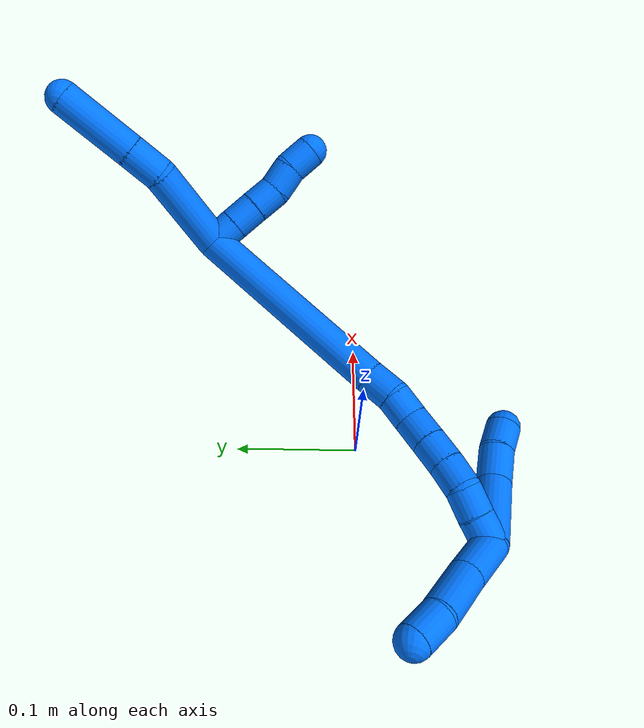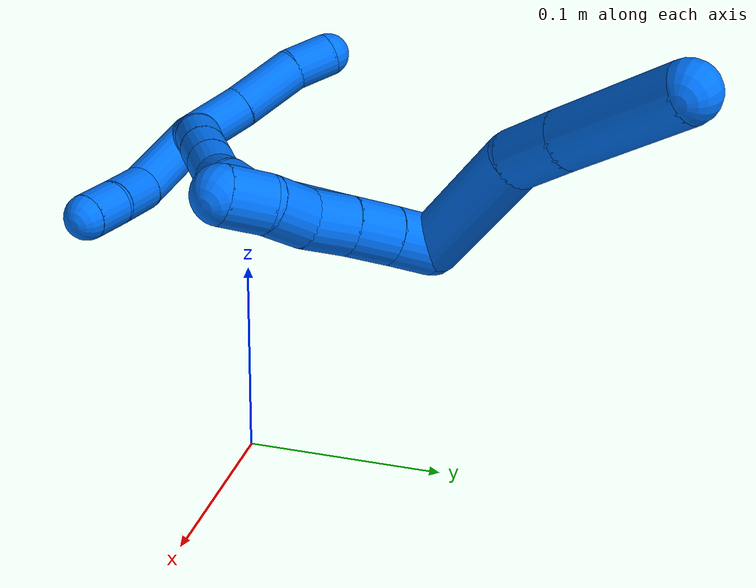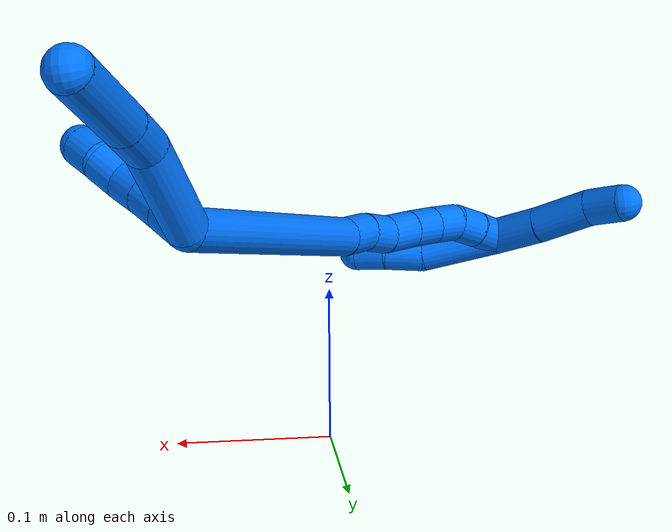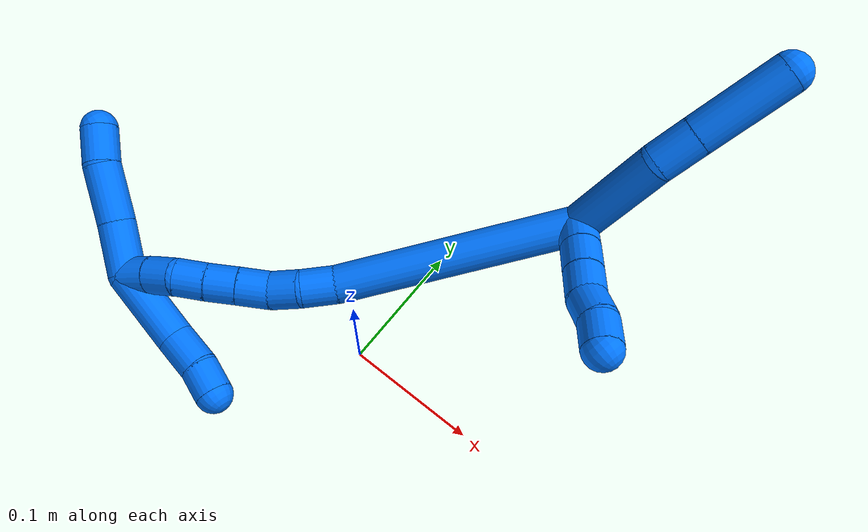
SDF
<sdf version="1.7">
 <world name="default">
  <model name="14">
   <static>0</static>
   <link name="14">
    <collision name="collision-cylinder-e_1_2_8">
     <pose>0.03073 0.009785 -0.002334 -1.80492 1.25443 -1.48541</pose>
     <geometry><cylinder><radius>0.0125</radius><length>0.064668</length></cylinder></geometry>
     <surface>
      <friction><ode><mu>1.16</mu><mu2>1.16</mu2><slip1>0</slip1><slip2>0</slip2></ode></friction>
      <contact><ode><kp>1e+06</kp><kd>1</kd><max_vel>0</max_vel><min_depth>0.001</min_depth></ode></contact>
     </surface>
    </collision>
    <visual name="visual-cylinder-e_1_2_8">
     <pose>0.03073 0.009785 -0.002334 -1.80492 1.25443 -1.48541</pose>
     <geometry><cylinder><radius>0.0125</radius><length>0.064668</length></cylinder></geometry>
     <material><ambient>0 0.462745 1 1</ambient></material>
    </visual>
    <collision name="collision-cylinder-e_2_8_9">
     <pose>0.072205 0.027433 -0.00603 -1.74235 0.93207 -1.07734</pose>
     <geometry><cylinder><radius>0.0125</radius><length>0.026769</length></cylinder></geometry>
     <surface>
      <friction><ode><mu>1.16</mu><mu2>1.16</mu2><slip1>0</slip1><slip2>0</slip2></ode></friction>
      <contact><ode><kp>1e+06</kp><kd>1</kd><max_vel>0</max_vel><min_depth>0.001</min_depth></ode></contact>
     </surface>
    </collision>
    <visual name="visual-cylinder-e_2_8_9">
     <pose>0.072205 0.027433 -0.00603 -1.74235 0.93207 -1.07734</pose>
     <geometry><cylinder><radius>0.0125</radius><length>0.026769</length></cylinder></geometry>
     <material><ambient>0 0.462745 1 1</ambient></material>
    </visual>
    <collision name="collision-cylinder-e_3_9_6">
     <pose>0.106216 0.052788 -0.010574 -1.75072 0.918262 -1.06963</pose>
     <geometry><cylinder><radius>0.0125</radius><length>0.058563</length></cylinder></geometry>
     <surface>
      <friction><ode><mu>1.16</mu><mu2>1.16</mu2><slip1>0</slip1><slip2>0</slip2></ode></friction>
      <contact><ode><kp>1e+06</kp><kd>1</kd><max_vel>0</max_vel><min_depth>0.001</min_depth></ode></contact>
     </surface>
    </collision>
    <visual name="visual-cylinder-e_3_9_6">
     <pose>0.106216 0.052788 -0.010574 -1.75072 0.918262 -1.06963</pose>
     <geometry><cylinder><radius>0.0125</radius><length>0.058563</length></cylinder></geometry>
     <material><ambient>0 0.462745 1 1</ambient></material>
    </visual>
    <collision name="collision-cylinder-e_1_2_10">
     <pose>0.002126 -0.007094 -0.006719 2.32905 0.214248 0.489889</pose>
     <geometry><cylinder><radius>0.0125</radius><length>0.02</length></cylinder></geometry>
     <surface>
      <friction><ode><mu>1.16</mu><mu2>1.16</mu2><slip1>0</slip1><slip2>0</slip2></ode></friction>
      <contact><ode><kp>1e+06</kp><kd>1</kd><max_vel>0</max_vel><min_depth>0.001</min_depth></ode></contact>
     </surface>
    </collision>
    <visual name="visual-cylinder-e_1_2_10">
     <pose>0.002126 -0.007094 -0.006719 2.32905 0.214248 0.489889</pose>
     <geometry><cylinder><radius>0.0125</radius><length>0.02</length></cylinder></geometry>
     <material><ambient>0 0.462745 1 1</ambient></material>
    </visual>
    <collision name="collision-cylinder-e_2_10_11">
     <pose>0.006128 -0.02134 -0.020173 2.3262 0.188715 0.431427</pose>
     <geometry><cylinder><radius>0.0125</radius><length>0.02</length></cylinder></geometry>
     <surface>
      <friction><ode><mu>1.16</mu><mu2>1.16</mu2><slip1>0</slip1><slip2>0</slip2></ode></friction>
      <contact><ode><kp>1e+06</kp><kd>1</kd><max_vel>0</max_vel><min_depth>0.001</min_depth></ode></contact>
     </surface>
    </collision>
    <visual name="visual-cylinder-e_2_10_11">
     <pose>0.006128 -0.02134 -0.020173 2.3262 0.188715 0.431427</pose>
     <geometry><cylinder><radius>0.0125</radius><length>0.02</length></cylinder></geometry>
     <material><ambient>0 0.462745 1 1</ambient></material>
    </visual>
    <collision name="collision-cylinder-e_3_11_12">
     <pose>0.009515 -0.035503 -0.033873 2.35287 0.151638 0.361094</pose>
     <geometry><cylinder><radius>0.0125</radius><length>0.02</length></cylinder></geometry>
     <surface>
      <friction><ode><mu>1.16</mu><mu2>1.16</mu2><slip1>0</slip1><slip2>0</slip2></ode></friction>
      <contact><ode><kp>1e+06</kp><kd>1</kd><max_vel>0</max_vel><min_depth>0.001</min_depth></ode></contact>
     </surface>
    </collision>
    <visual name="visual-cylinder-e_3_11_12">
     <pose>0.009515 -0.035503 -0.033873 2.35287 0.151638 0.361094</pose>
     <geometry><cylinder><radius>0.0125</radius><length>0.02</length></cylinder></geometry>
     <material><ambient>0 0.462745 1 1</ambient></material>
    </visual>
    <collision name="collision-cylinder-e_4_12_13">
     <pose>0.015098 -0.048168 -0.048014 2.47438 0.419512 1.10173</pose>
     <geometry><cylinder><radius>0.0125</radius><length>0.02</length></cylinder></geometry>
     <surface>
      <friction><ode><mu>1.16</mu><mu2>1.16</mu2><slip1>0</slip1><slip2>0</slip2></ode></friction>
      <contact><ode><kp>1e+06</kp><kd>1</kd><max_vel>0</max_vel><min_depth>0.001</min_depth></ode></contact>
     </surface>
    </collision>
    <visual name="visual-cylinder-e_4_12_13">
     <pose>0.015098 -0.048168 -0.048014 2.47438 0.419512 1.10173</pose>
     <geometry><cylinder><radius>0.0125</radius><length>0.02</length></cylinder></geometry>
     <material><ambient>0 0.462745 1 1</ambient></material>
    </visual>
    <collision name="collision-cylinder-e_5_13_5">
     <pose>0.020975 -0.060849 -0.062068 2.34535 0.181322 0.425759</pose>
     <geometry><cylinder><radius>0.0125</radius><length>0.02</length></cylinder></geometry>
     <surface>
      <friction><ode><mu>1.16</mu><mu2>1.16</mu2><slip1>0</slip1><slip2>0</slip2></ode></friction>
      <contact><ode><kp>1e+06</kp><kd>1</kd><max_vel>0</max_vel><min_depth>0.001</min_depth></ode></contact>
     </surface>
    </collision>
    <visual name="visual-cylinder-e_5_13_5">
     <pose>0.020975 -0.060849 -0.062068 2.34535 0.181322 0.425759</pose>
     <geometry><cylinder><radius>0.0125</radius><length>0.02</length></cylinder></geometry>
     <material><ambient>0 0.462745 1 1</ambient></material>
    </visual>
    <collision name="collision-cylinder-e_1_2_14">
     <pose>-0.042052 -0.056607 0.032583 1.04851 -0.572033 -0.336868</pose>
     <geometry><cylinder><radius>0.0125</radius><length>0.155363</length></cylinder></geometry>
     <surface>
      <friction><ode><mu>1.16</mu><mu2>1.16</mu2><slip1>0</slip1><slip2>0</slip2></ode></friction>
      <contact><ode><kp>1e+06</kp><kd>1</kd><max_vel>0</max_vel><min_depth>0.001</min_depth></ode></contact>
     </surface>
    </collision>
    <visual name="visual-cylinder-e_1_2_14">
     <pose>-0.042052 -0.056607 0.032583 1.04851 -0.572033 -0.336868</pose>
     <geometry><cylinder><radius>0.0125</radius><length>0.155363</length></cylinder></geometry>
     <material><ambient>0 0.462745 1 1</ambient></material>
    </visual>
    <collision name="collision-cylinder-e_2_14_15">
     <pose>-0.08841 -0.122038 0.070835 0.999717 -0.389496 -0.214614</pose>
     <geometry><cylinder><radius>0.0125</radius><length>0.022675</length></cylinder></geometry>
     <surface>
      <friction><ode><mu>1.16</mu><mu2>1.16</mu2><slip1>0</slip1><slip2>0</slip2></ode></friction>
      <contact><ode><kp>1e+06</kp><kd>1</kd><max_vel>0</max_vel><min_depth>0.001</min_depth></ode></contact>
     </surface>
    </collision>
    <visual name="visual-cylinder-e_2_14_15">
     <pose>-0.08841 -0.122038 0.070835 0.999717 -0.389496 -0.214614</pose>
     <geometry><cylinder><radius>0.0125</radius><length>0.022675</length></cylinder></geometry>
     <material><ambient>0 0.462745 1 1</ambient></material>
    </visual>
    <collision name="collision-cylinder-e_3_15_16">
     <pose>-0.098217 -0.136886 0.082354 0.800146 -0.580046 -0.251079</pose>
     <geometry><cylinder><radius>0.0125</radius><length>0.020078</length></cylinder></geometry>
     <surface>
      <friction><ode><mu>1.16</mu><mu2>1.16</mu2><slip1>0</slip1><slip2>0</slip2></ode></friction>
      <contact><ode><kp>1e+06</kp><kd>1</kd><max_vel>0</max_vel><min_depth>0.001</min_depth></ode></contact>
     </surface>
    </collision>
    <visual name="visual-cylinder-e_3_15_16">
     <pose>-0.098217 -0.136886 0.082354 0.800146 -0.580046 -0.251079</pose>
     <geometry><cylinder><radius>0.0125</radius><length>0.020078</length></cylinder></geometry>
     <material><ambient>0 0.462745 1 1</ambient></material>
    </visual>
    <collision name="collision-cylinder-e_4_16_17">
     <pose>-0.106869 -0.149857 0.095764 0.743056 -0.297697 -0.116721</pose>
     <geometry><cylinder><radius>0.0125</radius><length>0.021479</length></cylinder></geometry>
     <surface>
      <friction><ode><mu>1.16</mu><mu2>1.16</mu2><slip1>0</slip1><slip2>0</slip2></ode></friction>
      <contact><ode><kp>1e+06</kp><kd>1</kd><max_vel>0</max_vel><min_depth>0.001</min_depth></ode></contact>
     </surface>
    </collision>
    <visual name="visual-cylinder-e_4_16_17">
     <pose>-0.106869 -0.149857 0.095764 0.743056 -0.297697 -0.116721</pose>
     <geometry><cylinder><radius>0.0125</radius><length>0.021479</length></cylinder></geometry>
     <material><ambient>0 0.462745 1 1</ambient></material>
    </visual>
    <collision name="collision-cylinder-e_5_17_18">
     <pose>-0.113236 -0.163209 0.110337 0.74022 -0.326574 -0.127672</pose>
     <geometry><cylinder><radius>0.0125</radius><length>0.020055</length></cylinder></geometry>
     <surface>
      <friction><ode><mu>1.16</mu><mu2>1.16</mu2><slip1>0</slip1><slip2>0</slip2></ode></friction>
      <contact><ode><kp>1e+06</kp><kd>1</kd><max_vel>0</max_vel><min_depth>0.001</min_depth></ode></contact>
     </surface>
    </collision>
    <visual name="visual-cylinder-e_5_17_18">
     <pose>-0.113236 -0.163209 0.110337 0.74022 -0.326574 -0.127672</pose>
     <geometry><cylinder><radius>0.0125</radius><length>0.020055</length></cylinder></geometry>
     <material><ambient>0 0.462745 1 1</ambient></material>
    </visual>
    <collision name="collision-cylinder-e_6_18_19">
     <pose>-0.119855 -0.175634 0.12478 0.680907 -0.341868 -0.122147</pose>
     <geometry><cylinder><radius>0.0125</radius><length>0.020301</length></cylinder></geometry>
     <surface>
      <friction><ode><mu>1.16</mu><mu2>1.16</mu2><slip1>0</slip1><slip2>0</slip2></ode></friction>
      <contact><ode><kp>1e+06</kp><kd>1</kd><max_vel>0</max_vel><min_depth>0.001</min_depth></ode></contact>
     </surface>
    </collision>
    <visual name="visual-cylinder-e_6_18_19">
     <pose>-0.119855 -0.175634 0.12478 0.680907 -0.341868 -0.122147</pose>
     <geometry><cylinder><radius>0.0125</radius><length>0.020301</length></cylinder></geometry>
     <material><ambient>0 0.462745 1 1</ambient></material>
    </visual>
    <collision name="collision-cylinder-e_7_19_20">
     <pose>-0.129364 -0.185716 0.139024 0.537476 -0.656003 -0.186888</pose>
     <geometry><cylinder><radius>0.0125</radius><length>0.020021</length></cylinder></geometry>
     <surface>
      <friction><ode><mu>1.16</mu><mu2>1.16</mu2><slip1>0</slip1><slip2>0</slip2></ode></friction>
      <contact><ode><kp>1e+06</kp><kd>1</kd><max_vel>0</max_vel><min_depth>0.001</min_depth></ode></contact>
     </surface>
    </collision>
    <visual name="visual-cylinder-e_7_19_20">
     <pose>-0.129364 -0.185716 0.139024 0.537476 -0.656003 -0.186888</pose>
     <geometry><cylinder><radius>0.0125</radius><length>0.020021</length></cylinder></geometry>
     <material><ambient>0 0.462745 1 1</ambient></material>
    </visual>
    <collision name="collision-cylinder-e_8_20_1">
     <pose>-0.142041 -0.194053 0.15207 0.601371 -0.715661 -0.23087</pose>
     <geometry><cylinder><radius>0.0125</radius><length>0.020029</length></cylinder></geometry>
     <surface>
      <friction><ode><mu>1.16</mu><mu2>1.16</mu2><slip1>0</slip1><slip2>0</slip2></ode></friction>
      <contact><ode><kp>1e+06</kp><kd>1</kd><max_vel>0</max_vel><min_depth>0.001</min_depth></ode></contact>
     </surface>
    </collision>
    <visual name="visual-cylinder-e_8_20_1">
     <pose>-0.142041 -0.194053 0.15207 0.601371 -0.715661 -0.23087</pose>
     <geometry><cylinder><radius>0.0125</radius><length>0.020029</length></cylinder></geometry>
     <material><ambient>0 0.462745 1 1</ambient></material>
    </visual>
    <collision name="collision-cylinder-e_1_1_21">
     <pose>-0.151445 -0.196197 0.132129 -3.06035 -0.107495 1.84762</pose>
     <geometry><cylinder><radius>0.0125</radius><length>0.052824</length></cylinder></geometry>
     <surface>
      <friction><ode><mu>1.16</mu><mu2>1.16</mu2><slip1>0</slip1><slip2>0</slip2></ode></friction>
      <contact><ode><kp>1e+06</kp><kd>1</kd><max_vel>0</max_vel><min_depth>0.001</min_depth></ode></contact>
     </surface>
    </collision>
    <visual name="visual-cylinder-e_1_1_21">
     <pose>-0.151445 -0.196197 0.132129 -3.06035 -0.107495 1.84762</pose>
     <geometry><cylinder><radius>0.0125</radius><length>0.052824</length></cylinder></geometry>
     <material><ambient>0 0.462745 1 1</ambient></material>
    </visual>
    <collision name="collision-cylinder-e_2_21_22">
     <pose>-0.152153 -0.19406 0.092874 -3.14109 0.161059 -3.13533</pose>
     <geometry><cylinder><radius>0.0125</radius><length>0.026507</length></cylinder></geometry>
     <surface>
      <friction><ode><mu>1.16</mu><mu2>1.16</mu2><slip1>0</slip1><slip2>0</slip2></ode></friction>
      <contact><ode><kp>1e+06</kp><kd>1</kd><max_vel>0</max_vel><min_depth>0.001</min_depth></ode></contact>
     </surface>
    </collision>
    <visual name="visual-cylinder-e_2_21_22">
     <pose>-0.152153 -0.19406 0.092874 -3.14109 0.161059 -3.13533</pose>
     <geometry><cylinder><radius>0.0125</radius><length>0.026507</length></cylinder></geometry>
     <material><ambient>0 0.462745 1 1</ambient></material>
    </visual>
    <collision name="collision-cylinder-e_3_22_4">
     <pose>-0.149848 -0.195329 0.069538 3.01778 0.017386 0.278688</pose>
     <geometry><cylinder><radius>0.0125</radius><length>0.020669</length></cylinder></geometry>
     <surface>
      <friction><ode><mu>1.16</mu><mu2>1.16</mu2><slip1>0</slip1><slip2>0</slip2></ode></friction>
      <contact><ode><kp>1e+06</kp><kd>1</kd><max_vel>0</max_vel><min_depth>0.001</min_depth></ode></contact>
     </surface>
    </collision>
    <visual name="visual-cylinder-e_3_22_4">
     <pose>-0.149848 -0.195329 0.069538 3.01778 0.017386 0.278688</pose>
     <geometry><cylinder><radius>0.0125</radius><length>0.020669</length></cylinder></geometry>
     <material><ambient>0 0.462745 1 1</ambient></material>
    </visual>
    <collision name="collision-cylinder-e_1_1_23">
     <pose>-0.142425 -0.19335 0.174153 -0.304318 0.356451 -0.055232</pose>
     <geometry><cylinder><radius>0.0125</radius><length>0.035459</length></cylinder></geometry>
     <surface>
      <friction><ode><mu>1.16</mu><mu2>1.16</mu2><slip1>0</slip1><slip2>0</slip2></ode></friction>
      <contact><ode><kp>1e+06</kp><kd>1</kd><max_vel>0</max_vel><min_depth>0.001</min_depth></ode></contact>
     </surface>
    </collision>
    <visual name="visual-cylinder-e_1_1_23">
     <pose>-0.142425 -0.19335 0.174153 -0.304318 0.356451 -0.055232</pose>
     <geometry><cylinder><radius>0.0125</radius><length>0.035459</length></cylinder></geometry>
     <material><ambient>0 0.462745 1 1</ambient></material>
    </visual>
    <collision name="collision-cylinder-e_2_23_24">
     <pose>-0.128599 -0.183955 0.207717 -0.244354 0.396309 -0.049299</pose>
     <geometry><cylinder><radius>0.0125</radius><length>0.039578</length></cylinder></geometry>
     <surface>
      <friction><ode><mu>1.16</mu><mu2>1.16</mu2><slip1>0</slip1><slip2>0</slip2></ode></friction>
      <contact><ode><kp>1e+06</kp><kd>1</kd><max_vel>0</max_vel><min_depth>0.001</min_depth></ode></contact>
     </surface>
    </collision>
    <visual name="visual-cylinder-e_2_23_24">
     <pose>-0.128599 -0.183955 0.207717 -0.244354 0.396309 -0.049299</pose>
     <geometry><cylinder><radius>0.0125</radius><length>0.039578</length></cylinder></geometry>
     <material><ambient>0 0.462745 1 1</ambient></material>
    </visual>
    <collision name="collision-cylinder-e_3_24_3">
     <pose>-0.117287 -0.174346 0.23617 -0.450358 0.298712 -0.06891</pose>
     <geometry><cylinder><radius>0.0125</radius><length>0.024963</length></cylinder></geometry>
     <surface>
      <friction><ode><mu>1.16</mu><mu2>1.16</mu2><slip1>0</slip1><slip2>0</slip2></ode></friction>
      <contact><ode><kp>1e+06</kp><kd>1</kd><max_vel>0</max_vel><min_depth>0.001</min_depth></ode></contact>
     </surface>
    </collision>
    <visual name="visual-cylinder-e_3_24_3">
     <pose>-0.117287 -0.174346 0.23617 -0.450358 0.298712 -0.06891</pose>
     <geometry><cylinder><radius>0.0125</radius><length>0.024963</length></cylinder></geometry>
     <material><ambient>0 0.462745 1 1</ambient></material>
    </visual>
    <collision name="collision-sphere-3">
     <pose>-0.113614 -0.169153 0.246909 0 -0 0</pose>
     <geometry><sphere><radius>0.0125</radius></sphere></geometry>
     <surface>
      <friction><ode><mu>1.16</mu><mu2>1.16</mu2><slip1>0</slip1><slip2>0</slip2></ode></friction>
      <contact><ode><kp>1e+06</kp><kd>1</kd><max_vel>0</max_vel><min_depth>0.001</min_depth></ode></contact>
     </surface>
    </collision>
    <visual name="visual-sphere-3">
     <pose>-0.113614 -0.169153 0.246909 0 -0 0</pose>
     <geometry><sphere><radius>0.0125</radius></sphere></geometry>
     <material><ambient>0 0.462745 1 1</ambient></material>
    </visual>
    <collision name="collision-sphere-24">
     <pose>-0.12096 -0.179538 0.22543 0 -0 0</pose>
     <geometry><sphere><radius>0.0125</radius></sphere></geometry>
     <surface>
      <friction><ode><mu>1.16</mu><mu2>1.16</mu2><slip1>0</slip1><slip2>0</slip2></ode></friction>
      <contact><ode><kp>1e+06</kp><kd>1</kd><max_vel>0</max_vel><min_depth>0.001</min_depth></ode></contact>
     </surface>
    </collision>
    <visual name="visual-sphere-24">
     <pose>-0.12096 -0.179538 0.22543 0 -0 0</pose>
     <geometry><sphere><radius>0.0125</radius></sphere></geometry>
     <material><ambient>0 0.462745 1 1</ambient></material>
    </visual>
    <collision name="collision-sphere-23">
     <pose>-0.136238 -0.188371 0.190004 0 -0 0</pose>
     <geometry><sphere><radius>0.0125</radius></sphere></geometry>
     <surface>
      <friction><ode><mu>1.16</mu><mu2>1.16</mu2><slip1>0</slip1><slip2>0</slip2></ode></friction>
      <contact><ode><kp>1e+06</kp><kd>1</kd><max_vel>0</max_vel><min_depth>0.001</min_depth></ode></contact>
     </surface>
    </collision>
    <visual name="visual-sphere-23">
     <pose>-0.136238 -0.188371 0.190004 0 -0 0</pose>
     <geometry><sphere><radius>0.0125</radius></sphere></geometry>
     <material><ambient>0 0.462745 1 1</ambient></material>
    </visual>
    <collision name="collision-sphere-4">
     <pose>-0.149668 -0.196605 0.059284 0 -0 0</pose>
     <geometry><sphere><radius>0.0125</radius></sphere></geometry>
     <surface>
      <friction><ode><mu>1.16</mu><mu2>1.16</mu2><slip1>0</slip1><slip2>0</slip2></ode></friction>
      <contact><ode><kp>1e+06</kp><kd>1</kd><max_vel>0</max_vel><min_depth>0.001</min_depth></ode></contact>
     </surface>
    </collision>
    <visual name="visual-sphere-4">
     <pose>-0.149668 -0.196605 0.059284 0 -0 0</pose>
     <geometry><sphere><radius>0.0125</radius></sphere></geometry>
     <material><ambient>0 0.462745 1 1</ambient></material>
    </visual>
    <collision name="collision-sphere-22">
     <pose>-0.150028 -0.194053 0.079792 0 -0 0</pose>
     <geometry><sphere><radius>0.0125</radius></sphere></geometry>
     <surface>
      <friction><ode><mu>1.16</mu><mu2>1.16</mu2><slip1>0</slip1><slip2>0</slip2></ode></friction>
      <contact><ode><kp>1e+06</kp><kd>1</kd><max_vel>0</max_vel><min_depth>0.001</min_depth></ode></contact>
     </surface>
    </collision>
    <visual name="visual-sphere-22">
     <pose>-0.150028 -0.194053 0.079792 0 -0 0</pose>
     <geometry><sphere><radius>0.0125</radius></sphere></geometry>
     <material><ambient>0 0.462745 1 1</ambient></material>
    </visual>
    <collision name="collision-sphere-21">
     <pose>-0.154279 -0.194066 0.105956 0 -0 0</pose>
     <geometry><sphere><radius>0.0125</radius></sphere></geometry>
     <surface>
      <friction><ode><mu>1.16</mu><mu2>1.16</mu2><slip1>0</slip1><slip2>0</slip2></ode></friction>
      <contact><ode><kp>1e+06</kp><kd>1</kd><max_vel>0</max_vel><min_depth>0.001</min_depth></ode></contact>
     </surface>
    </collision>
    <visual name="visual-sphere-21">
     <pose>-0.154279 -0.194066 0.105956 0 -0 0</pose>
     <geometry><sphere><radius>0.0125</radius></sphere></geometry>
     <material><ambient>0 0.462745 1 1</ambient></material>
    </visual>
    <collision name="collision-sphere-1">
     <pose>-0.148611 -0.198328 0.158301 0 -0 0</pose>
     <geometry><sphere><radius>0.0125</radius></sphere></geometry>
     <surface>
      <friction><ode><mu>1.16</mu><mu2>1.16</mu2><slip1>0</slip1><slip2>0</slip2></ode></friction>
      <contact><ode><kp>1e+06</kp><kd>1</kd><max_vel>0</max_vel><min_depth>0.001</min_depth></ode></contact>
     </surface>
    </collision>
    <visual name="visual-sphere-1">
     <pose>-0.148611 -0.198328 0.158301 0 -0 0</pose>
     <geometry><sphere><radius>0.0125</radius></sphere></geometry>
     <material><ambient>0 0.462745 1 1</ambient></material>
    </visual>
    <collision name="collision-sphere-11">
     <pose>0.008004 -0.02849 -0.026907 0 -0 0</pose>
     <geometry><sphere><radius>0.0125</radius></sphere></geometry>
     <surface>
      <friction><ode><mu>1.16</mu><mu2>1.16</mu2><slip1>0</slip1><slip2>0</slip2></ode></friction>
      <contact><ode><kp>1e+06</kp><kd>1</kd><max_vel>0</max_vel><min_depth>0.001</min_depth></ode></contact>
     </surface>
    </collision>
    <visual name="visual-sphere-11">
     <pose>0.008004 -0.02849 -0.026907 0 -0 0</pose>
     <geometry><sphere><radius>0.0125</radius></sphere></geometry>
     <material><ambient>0 0.462745 1 1</ambient></material>
    </visual>
    <collision name="collision-sphere-10">
     <pose>0.004252 -0.014189 -0.013439 0 -0 0</pose>
     <geometry><sphere><radius>0.0125</radius></sphere></geometry>
     <surface>
      <friction><ode><mu>1.16</mu><mu2>1.16</mu2><slip1>0</slip1><slip2>0</slip2></ode></friction>
      <contact><ode><kp>1e+06</kp><kd>1</kd><max_vel>0</max_vel><min_depth>0.001</min_depth></ode></contact>
     </surface>
    </collision>
    <visual name="visual-sphere-10">
     <pose>0.004252 -0.014189 -0.013439 0 -0 0</pose>
     <geometry><sphere><radius>0.0125</radius></sphere></geometry>
     <material><ambient>0 0.462745 1 1</ambient></material>
    </visual>
    <collision name="collision-sphere-6">
     <pose>0.129481 0.07028 -0.013755 0 -0 0</pose>
     <geometry><sphere><radius>0.0125</radius></sphere></geometry>
     <surface>
      <friction><ode><mu>1.16</mu><mu2>1.16</mu2><slip1>0</slip1><slip2>0</slip2></ode></friction>
      <contact><ode><kp>1e+06</kp><kd>1</kd><max_vel>0</max_vel><min_depth>0.001</min_depth></ode></contact>
     </surface>
    </collision>
    <visual name="visual-sphere-6">
     <pose>0.129481 0.07028 -0.013755 0 -0 0</pose>
     <geometry><sphere><radius>0.0125</radius></sphere></geometry>
     <material><ambient>0 0.462745 1 1</ambient></material>
    </visual>
    <collision name="collision-sphere-9">
     <pose>0.082951 0.035295 -0.007392 0 -0 0</pose>
     <geometry><sphere><radius>0.0125</radius></sphere></geometry>
     <surface>
      <friction><ode><mu>1.16</mu><mu2>1.16</mu2><slip1>0</slip1><slip2>0</slip2></ode></friction>
      <contact><ode><kp>1e+06</kp><kd>1</kd><max_vel>0</max_vel><min_depth>0.001</min_depth></ode></contact>
     </surface>
    </collision>
    <visual name="visual-sphere-9">
     <pose>0.082951 0.035295 -0.007392 0 -0 0</pose>
     <geometry><sphere><radius>0.0125</radius></sphere></geometry>
     <material><ambient>0 0.462745 1 1</ambient></material>
    </visual>
    <collision name="collision-sphere-2">
     <geometry><sphere><radius>0.0125</radius></sphere></geometry>
     <surface>
      <friction><ode><mu>1.16</mu><mu2>1.16</mu2><slip1>0</slip1><slip2>0</slip2></ode></friction>
      <contact><ode><kp>1e+06</kp><kd>1</kd><max_vel>0</max_vel><min_depth>0.001</min_depth></ode></contact>
     </surface>
    </collision>
    <visual name="visual-sphere-2">
     <geometry><sphere><radius>0.0125</radius></sphere></geometry>
     <material><ambient>0 0.462745 1 1</ambient></material>
    </visual>
    <collision name="collision-sphere-19">
     <pose>-0.123258 -0.181654 0.13221 0 -0 0</pose>
     <geometry><sphere><radius>0.0125</radius></sphere></geometry>
     <surface>
      <friction><ode><mu>1.16</mu><mu2>1.16</mu2><slip1>0</slip1><slip2>0</slip2></ode></friction>
      <contact><ode><kp>1e+06</kp><kd>1</kd><max_vel>0</max_vel><min_depth>0.001</min_depth></ode></contact>
     </surface>
    </collision>
    <visual name="visual-sphere-19">
     <pose>-0.123258 -0.181654 0.13221 0 -0 0</pose>
     <geometry><sphere><radius>0.0125</radius></sphere></geometry>
     <material><ambient>0 0.462745 1 1</ambient></material>
    </visual>
    <collision name="collision-sphere-8">
     <pose>0.061459 0.01957 -0.004667 0 -0 0</pose>
     <geometry><sphere><radius>0.0125</radius></sphere></geometry>
     <surface>
      <friction><ode><mu>1.16</mu><mu2>1.16</mu2><slip1>0</slip1><slip2>0</slip2></ode></friction>
      <contact><ode><kp>1e+06</kp><kd>1</kd><max_vel>0</max_vel><min_depth>0.001</min_depth></ode></contact>
     </surface>
    </collision>
    <visual name="visual-sphere-8">
     <pose>0.061459 0.01957 -0.004667 0 -0 0</pose>
     <geometry><sphere><radius>0.0125</radius></sphere></geometry>
     <material><ambient>0 0.462745 1 1</ambient></material>
    </visual>
    <collision name="collision-sphere-12">
     <pose>0.011025 -0.042517 -0.04084 0 -0 0</pose>
     <geometry><sphere><radius>0.0125</radius></sphere></geometry>
     <surface>
      <friction><ode><mu>1.16</mu><mu2>1.16</mu2><slip1>0</slip1><slip2>0</slip2></ode></friction>
      <contact><ode><kp>1e+06</kp><kd>1</kd><max_vel>0</max_vel><min_depth>0.001</min_depth></ode></contact>
     </surface>
    </collision>
    <visual name="visual-sphere-12">
     <pose>0.011025 -0.042517 -0.04084 0 -0 0</pose>
     <geometry><sphere><radius>0.0125</radius></sphere></geometry>
     <material><ambient>0 0.462745 1 1</ambient></material>
    </visual>
    <collision name="collision-sphere-13">
     <pose>0.019172 -0.053819 -0.055189 0 -0 0</pose>
     <geometry><sphere><radius>0.0125</radius></sphere></geometry>
     <surface>
      <friction><ode><mu>1.16</mu><mu2>1.16</mu2><slip1>0</slip1><slip2>0</slip2></ode></friction>
      <contact><ode><kp>1e+06</kp><kd>1</kd><max_vel>0</max_vel><min_depth>0.001</min_depth></ode></contact>
     </surface>
    </collision>
    <visual name="visual-sphere-13">
     <pose>0.019172 -0.053819 -0.055189 0 -0 0</pose>
     <geometry><sphere><radius>0.0125</radius></sphere></geometry>
     <material><ambient>0 0.462745 1 1</ambient></material>
    </visual>
    <collision name="collision-sphere-5">
     <pose>0.022778 -0.06788 -0.068947 0 -0 0</pose>
     <geometry><sphere><radius>0.0125</radius></sphere></geometry>
     <surface>
      <friction><ode><mu>1.16</mu><mu2>1.16</mu2><slip1>0</slip1><slip2>0</slip2></ode></friction>
      <contact><ode><kp>1e+06</kp><kd>1</kd><max_vel>0</max_vel><min_depth>0.001</min_depth></ode></contact>
     </surface>
    </collision>
    <visual name="visual-sphere-5">
     <pose>0.022778 -0.06788 -0.068947 0 -0 0</pose>
     <geometry><sphere><radius>0.0125</radius></sphere></geometry>
     <material><ambient>0 0.462745 1 1</ambient></material>
    </visual>
    <collision name="collision-sphere-14">
     <pose>-0.084105 -0.113214 0.065166 0 -0 0</pose>
     <geometry><sphere><radius>0.0125</radius></sphere></geometry>
     <surface>
      <friction><ode><mu>1.16</mu><mu2>1.16</mu2><slip1>0</slip1><slip2>0</slip2></ode></friction>
      <contact><ode><kp>1e+06</kp><kd>1</kd><max_vel>0</max_vel><min_depth>0.001</min_depth></ode></contact>
     </surface>
    </collision>
    <visual name="visual-sphere-14">
     <pose>-0.084105 -0.113214 0.065166 0 -0 0</pose>
     <geometry><sphere><radius>0.0125</radius></sphere></geometry>
     <material><ambient>0 0.462745 1 1</ambient></material>
    </visual>
    <collision name="collision-sphere-15">
     <pose>-0.092715 -0.130862 0.076504 0 -0 0</pose>
     <geometry><sphere><radius>0.0125</radius></sphere></geometry>
     <surface>
      <friction><ode><mu>1.16</mu><mu2>1.16</mu2><slip1>0</slip1><slip2>0</slip2></ode></friction>
      <contact><ode><kp>1e+06</kp><kd>1</kd><max_vel>0</max_vel><min_depth>0.001</min_depth></ode></contact>
     </surface>
    </collision>
    <visual name="visual-sphere-15">
     <pose>-0.092715 -0.130862 0.076504 0 -0 0</pose>
     <geometry><sphere><radius>0.0125</radius></sphere></geometry>
     <material><ambient>0 0.462745 1 1</ambient></material>
    </visual>
    <collision name="collision-sphere-16">
     <pose>-0.103719 -0.142911 0.088203 0 -0 0</pose>
     <geometry><sphere><radius>0.0125</radius></sphere></geometry>
     <surface>
      <friction><ode><mu>1.16</mu><mu2>1.16</mu2><slip1>0</slip1><slip2>0</slip2></ode></friction>
      <contact><ode><kp>1e+06</kp><kd>1</kd><max_vel>0</max_vel><min_depth>0.001</min_depth></ode></contact>
     </surface>
    </collision>
    <visual name="visual-sphere-16">
     <pose>-0.103719 -0.142911 0.088203 0 -0 0</pose>
     <geometry><sphere><radius>0.0125</radius></sphere></geometry>
     <material><ambient>0 0.462745 1 1</ambient></material>
    </visual>
    <collision name="collision-sphere-17">
     <pose>-0.110019 -0.156803 0.103325 0 -0 0</pose>
     <geometry><sphere><radius>0.0125</radius></sphere></geometry>
     <surface>
      <friction><ode><mu>1.16</mu><mu2>1.16</mu2><slip1>0</slip1><slip2>0</slip2></ode></friction>
      <contact><ode><kp>1e+06</kp><kd>1</kd><max_vel>0</max_vel><min_depth>0.001</min_depth></ode></contact>
     </surface>
    </collision>
    <visual name="visual-sphere-17">
     <pose>-0.110019 -0.156803 0.103325 0 -0 0</pose>
     <geometry><sphere><radius>0.0125</radius></sphere></geometry>
     <material><ambient>0 0.462745 1 1</ambient></material>
    </visual>
    <collision name="collision-sphere-18">
     <pose>-0.116452 -0.169614 0.117349 0 -0 0</pose>
     <geometry><sphere><radius>0.0125</radius></sphere></geometry>
     <surface>
      <friction><ode><mu>1.16</mu><mu2>1.16</mu2><slip1>0</slip1><slip2>0</slip2></ode></friction>
      <contact><ode><kp>1e+06</kp><kd>1</kd><max_vel>0</max_vel><min_depth>0.001</min_depth></ode></contact>
     </surface>
    </collision>
    <visual name="visual-sphere-18">
     <pose>-0.116452 -0.169614 0.117349 0 -0 0</pose>
     <geometry><sphere><radius>0.0125</radius></sphere></geometry>
     <material><ambient>0 0.462745 1 1</ambient></material>
    </visual>
    <collision name="collision-sphere-20">
     <pose>-0.13547 -0.189777 0.145838 0 -0 0</pose>
     <geometry><sphere><radius>0.0125</radius></sphere></geometry>
     <surface>
      <friction><ode><mu>1.16</mu><mu2>1.16</mu2><slip1>0</slip1><slip2>0</slip2></ode></friction>
      <contact><ode><kp>1e+06</kp><kd>1</kd><max_vel>0</max_vel><min_depth>0.001</min_depth></ode></contact>
     </surface>
    </collision>
    <visual name="visual-sphere-20">
     <pose>-0.13547 -0.189777 0.145838 0 -0 0</pose>
     <geometry><sphere><radius>0.0125</radius></sphere></geometry>
     <material><ambient>0 0.462745 1 1</ambient></material>
    </visual>
    <inertial>
     <pose>-0.053234 -0.092009 0.063701 0 -0 0</pose>
     <mass>0.75</mass>
     <inertia>
      <ixx>0.000193</ixx>
      <ixy>0</ixy>
      <ixz>0</ixz>
      <iyy>0.000153</iyy>
      <iyz>0</iyz>
      <izz>0.000354</izz>
     </inertia>
    </inertial>
   </link>
   <pose>0.089073 0.114153 0.163705 -1.25053 -1.18533 1.03708</pose>
  </model>
 </world>
</sdf>
